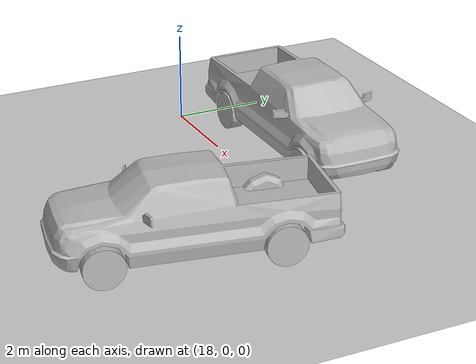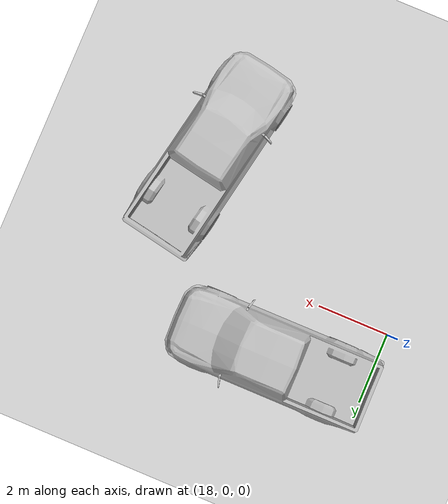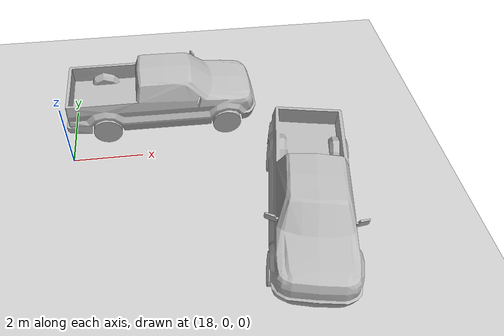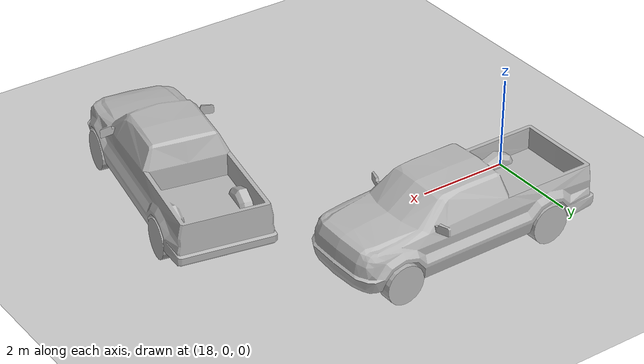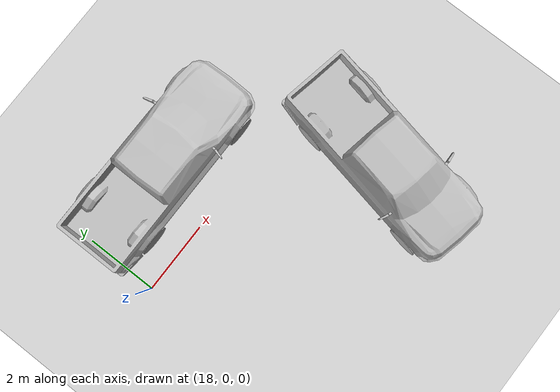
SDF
<sdf version="1.6">
 <world name="default">
  <light name="sun" type="directional">
   <pose>0 0 10 0 -0 0</pose>
   <diffuse>0.8 0.8 0.8 1</diffuse>
   <specular>0.2 0.2 0.2 1</specular>
   <attenuation>
    <range>1000</range>
    <constant>0.9</constant>
    <linear>0.01</linear>
    <quadratic>0.001</quadratic>
   </attenuation>
   <direction>-0.5 0.1 -0.9</direction>
  </light>
  <model name="ground_plane">
   <static>1</static>
   <link name="link">
    <collision name="collision">
     <geometry><plane><normal>0 0 1</normal><size>100 100</size></plane></geometry>
     <surface><friction><ode><mu>100</mu><mu2>50</mu2></ode></friction></surface>
    </collision>
    <visual name="visual">
     <cast_shadows>0</cast_shadows>
     <geometry><plane><normal>0 0 1</normal><size>100 100</size></plane></geometry>
     <material>
      <script><uri>file://media/materials/scripts/gazebo.material</uri><name>Gazebo/Grey</name></script>
     </material>
    </visual>
   </link>
  </model>
  <gravity>0 0 -9.8</gravity>
  <magnetic_field>6e-06 2.3e-05 -4.2e-05</magnetic_field>
  <atmosphere type="adiabatic"/>
  <physics name="default_physics" default="0" type="ode">
   <max_step_size>0.001</max_step_size>
   <real_time_factor>1</real_time_factor>
   <real_time_update_rate>1000</real_time_update_rate>
  </physics>
  <scene><ambient>0.4 0.4 0.4 1</ambient><background>0.7 0.7 0.7 1</background><shadows>1</shadows></scene>
  <audio><device>default</device></audio>
  <spherical_coordinates>
   <surface_model>EARTH_WGS84</surface_model>
   <latitude_deg>0</latitude_deg>
   <longitude_deg>0</longitude_deg>
   <elevation>0</elevation>
   <heading_deg>0</heading_deg>
  </spherical_coordinates>
  <model name="pickup">
   <static>1</static>
   <link name="link">
    <collision name="collision">
     <pose>0 0 0 0 0 -1.5708</pose>
     <geometry><mesh><uri>model://pickup/meshes/pickup.dae</uri></mesh></geometry>
    </collision>
    <visual name="visual">
     <pose>0 0 0 0 0 -1.5708</pose>
     <geometry><mesh><uri>model://pickup/meshes/pickup.dae</uri></mesh></geometry>
    </visual>
   </link>
   <pose>20.8172 1.71433 0 0 -0 0</pose>
  </model>
  <model name="pickup_0">
   <static>1</static>
   <link name="link">
    <collision name="collision">
     <pose>0 0 0 0 0 -1.5708</pose>
     <geometry><mesh><uri>model://pickup/meshes/pickup.dae</uri></mesh></geometry>
    </collision>
    <visual name="visual">
     <pose>0 0 0 0 0 -1.5708</pose>
     <geometry><mesh><uri>model://pickup/meshes/pickup.dae</uri></mesh></geometry>
    </visual>
   </link>
   <pose>24.2594 -2.79718 0 0 0 -1.76106</pose>
  </model>
 </world>
</sdf>
